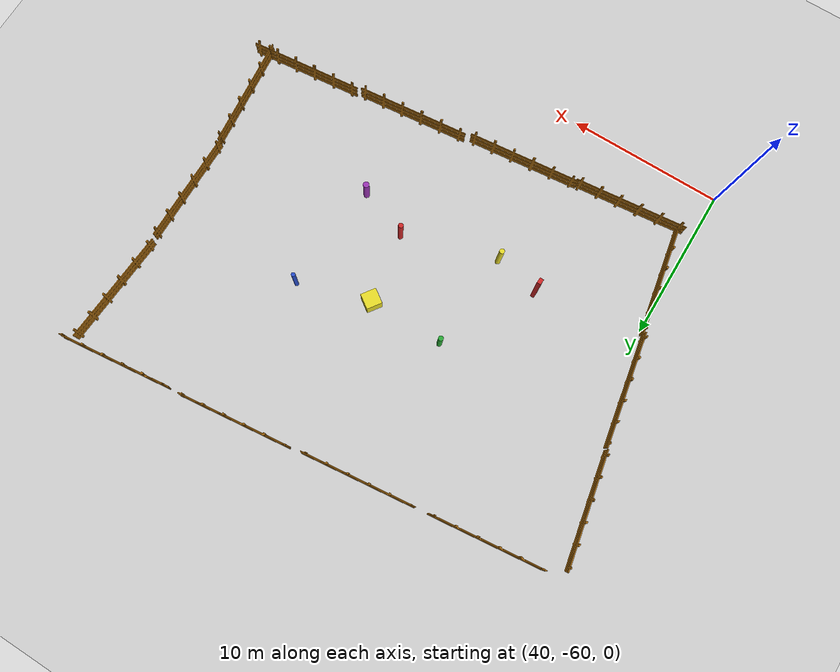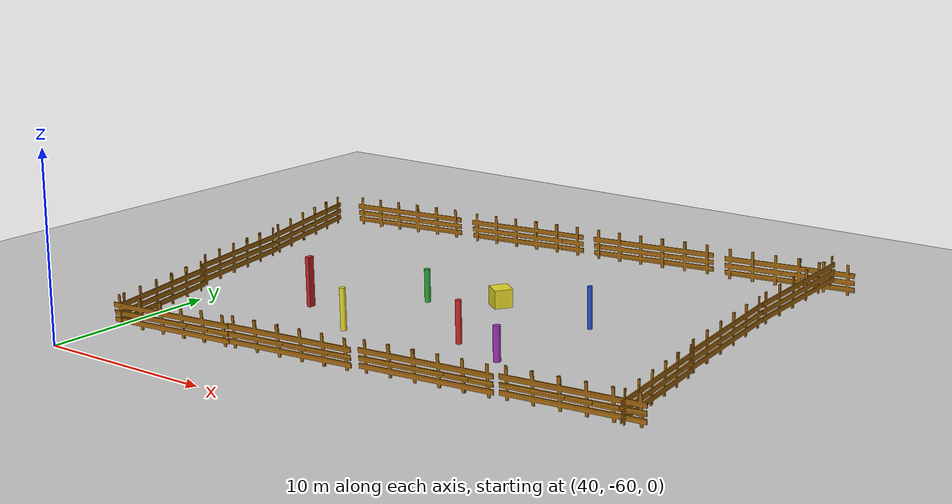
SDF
<sdf version="1.6">
 <world name="default">
  <light name="sun" type="directional">
   <pose>0 0 10 0 -0 0</pose>
   <diffuse>0.8 0.8 0.8 1</diffuse>
   <specular>0.2 0.2 0.2 1</specular>
   <attenuation>
    <range>1000</range>
    <constant>0.9</constant>
    <linear>0.01</linear>
    <quadratic>0.001</quadratic>
   </attenuation>
   <direction>-0.5 0.1 -0.9</direction>
  </light>
  <physics name="default_physics" default="0" type="ode">
   <real_time_update_rate>1000</real_time_update_rate>
   <real_time_factor>1</real_time_factor>
   <max_step_size>0.001</max_step_size>
  </physics>
  <gravity>0 0 -9.8</gravity>
  <magnetic_field>6e-06 2.3e-05 -4.2e-05</magnetic_field>
  <atmosphere type="adiabatic"/>
  <scene>
   <sky><clouds><speed>12</speed></clouds></sky>
   <shadows>1</shadows>
   <ambient>0.4 0.4 0.4 1</ambient>
   <background>0.7 0.7 0.7 1</background>
  </scene>
  <spherical_coordinates>
   <surface_model>EARTH_WGS84</surface_model>
   <latitude_deg>0</latitude_deg>
   <longitude_deg>0</longitude_deg>
   <elevation>0</elevation>
   <heading_deg>0</heading_deg>
  </spherical_coordinates>
  <model name="fence_5">
   <static>1</static>
   <link name="link">
    <inertial>
     <mass>100</mass>
     <inertia><ixx>192.33</ixx><ixy>0</ixy><ixz>0</ixz><iyy>12.33</iyy><iyz>0</iyz><izz>204</izz></inertia>
    </inertial>
    <collision name="collision">
     <geometry><mesh><uri>model://fence_5/meshes/fence_5_brown.dae</uri><scale>1 1 1</scale></mesh></geometry>
    </collision>
    <visual name="visual">
     <geometry><mesh><uri>model://fence_5/meshes/fence_5_brown.dae</uri><scale>1 1 1</scale></mesh></geometry>
    </visual>
   </link>
   <pose>41.6449 -52.737 1.01497 0.014116 0.007603 -1.39043</pose>
  </model>
  <model name="fence_5_clone_0_clone">
   <static>1</static>
   <link name="link">
    <inertial>
     <mass>100</mass>
     <inertia><ixx>192.33</ixx><ixy>0</ixy><ixz>0</ixz><iyy>12.33</iyy><iyz>0</iyz><izz>204</izz></inertia>
    </inertial>
    <collision name="collision">
     <geometry><mesh><uri>model://fence_5/meshes/fence_5_brown.dae</uri><scale>1 1 1</scale></mesh></geometry>
    </collision>
    <visual name="visual">
     <geometry><mesh><uri>model://fence_5/meshes/fence_5_brown.dae</uri><scale>1 1 1</scale></mesh></geometry>
    </visual>
   </link>
   <pose>69.2217 -35.0688 1.89165 -0.006758 0.071374 -1.61301</pose>
  </model>
  <model name="fence_5_clone_0_clone_0">
   <static>1</static>
   <link name="link">
    <inertial>
     <mass>100</mass>
     <inertia><ixx>192.33</ixx><ixy>0</ixy><ixz>0</ixz><iyy>12.33</iyy><iyz>0</iyz><izz>204</izz></inertia>
    </inertial>
    <collision name="collision">
     <geometry><mesh><uri>model://fence_5/meshes/fence_5_brown.dae</uri><scale>1 1 1</scale></mesh></geometry>
    </collision>
    <visual name="visual">
     <geometry><mesh><uri>model://fence_5/meshes/fence_5_brown.dae</uri><scale>1 1 1</scale></mesh></geometry>
    </visual>
   </link>
   <pose>69.2517 -42.5183 1.4512 -0.00172 0.070673 -1.54061</pose>
  </model>
  <model name="fence_5_clone_0_clone_1">
   <static>1</static>
   <link name="link">
    <inertial>
     <mass>100</mass>
     <inertia><ixx>192.33</ixx><ixy>0</ixy><ixz>0</ixz><iyy>12.33</iyy><iyz>0</iyz><izz>204</izz></inertia>
    </inertial>
    <collision name="collision">
     <geometry><mesh><uri>model://fence_5/meshes/fence_5_brown.dae</uri><scale>1 1 1</scale></mesh></geometry>
    </collision>
    <visual name="visual">
     <geometry><mesh><uri>model://fence_5/meshes/fence_5_brown.dae</uri><scale>1 1 1</scale></mesh></geometry>
    </visual>
   </link>
   <pose>69.8432 -49.6932 1.08703 -0.01162 0.02213 -1.47072</pose>
  </model>
  <model name="fence_5_clone_0_clone_1_clone_clone_1">
   <static>1</static>
   <link name="link">
    <inertial>
     <mass>100</mass>
     <inertia><ixx>192.33</ixx><ixy>0</ixy><ixz>0</ixz><iyy>12.33</iyy><iyz>0</iyz><izz>204</izz></inertia>
    </inertial>
    <collision name="collision">
     <geometry><mesh><uri>model://fence_5/meshes/fence_5_brown.dae</uri><scale>1 1 1</scale></mesh></geometry>
    </collision>
    <visual name="visual">
     <geometry><mesh><uri>model://fence_5/meshes/fence_5_brown.dae</uri><scale>1 1 1</scale></mesh></geometry>
    </visual>
   </link>
   <pose>44.7747 -57.3444 0.883617 -0.084624 0.000646 -3.03348</pose>
  </model>
  <model name="fence_5_clone_0_clone_clone_clone_0">
   <static>1</static>
   <link name="link">
    <inertial>
     <mass>100</mass>
     <inertia><ixx>192.33</ixx><ixy>0</ixy><ixz>0</ixz><iyy>12.33</iyy><iyz>0</iyz><izz>204</izz></inertia>
    </inertial>
    <collision name="collision">
     <geometry><mesh><uri>model://fence_5/meshes/fence_5_brown.dae</uri><scale>1 1 1</scale></mesh></geometry>
    </collision>
    <visual name="visual">
     <geometry><mesh><uri>model://fence_5/meshes/fence_5_brown.dae</uri><scale>1 1 1</scale></mesh></geometry>
    </visual>
   </link>
   <pose>41.5544 -33.278 1.57982 0.084583 -0.00842 0.112795</pose>
  </model>
  <model name="grass_ground_plane">
   <static>1</static>
   <link name="link">
    <collision name="collision">
     <geometry><plane><normal>0 0 1</normal><size>200 200</size></plane></geometry>
     <surface><friction><ode><mu>0.5</mu><mu2>0.5</mu2></ode></friction></surface>
    </collision>
    <visual name="visual">
     <cast_shadows>0</cast_shadows>
     <geometry><plane><normal>0 0 1</normal><size>200 200</size></plane></geometry>
     <material>
      <script>
       <uri>model://grass_ground_plane/materials/scripts/grass_ground_plane.material</uri>
       <name>GrassGroundPlane/Image</name>
      </script>
     </material>
    </visual>
   </link>
  </model>
  <model name="fence_5_clone_0_clone_1_clone_clone_1_clone">
   <static>1</static>
   <link name="link">
    <inertial>
     <mass>100</mass>
     <inertia><ixx>192.33</ixx><ixy>0</ixy><ixz>0</ixz><iyy>12.33</iyy><iyz>0</iyz><izz>204</izz></inertia>
    </inertial>
    <collision name="collision">
     <geometry><mesh><uri>model://fence_5/meshes/fence_5_brown.dae</uri><scale>1 1 1</scale></mesh></geometry>
    </collision>
    <visual name="visual">
     <geometry><mesh><uri>model://fence_5/meshes/fence_5_brown.dae</uri><scale>1 1 1</scale></mesh></geometry>
    </visual>
   </link>
   <pose>51.8829 -56.4713 0.89101 -0.084624 0.000646 -3.03348</pose>
  </model>
  <model name="fence_5_clone_0_clone_1_clone_clone_1_clone_0">
   <static>1</static>
   <link name="link">
    <inertial>
     <mass>100</mass>
     <inertia><ixx>192.33</ixx><ixy>0</ixy><ixz>0</ixz><iyy>12.33</iyy><iyz>0</iyz><izz>204</izz></inertia>
    </inertial>
    <collision name="collision">
     <geometry><mesh><uri>model://fence_5/meshes/fence_5_brown.dae</uri><scale>1 1 1</scale></mesh></geometry>
    </collision>
    <visual name="visual">
     <geometry><mesh><uri>model://fence_5/meshes/fence_5_brown.dae</uri><scale>1 1 1</scale></mesh></geometry>
    </visual>
   </link>
   <pose>59.4161 -55.4745 0.908181 -0.084624 0.000646 -3.03348</pose>
  </model>
  <model name="fence_5_clone_0_clone_1_clone_clone_1_clone_1">
   <static>1</static>
   <link name="link">
    <inertial>
     <mass>100</mass>
     <inertia><ixx>192.33</ixx><ixy>0</ixy><ixz>0</ixz><iyy>12.33</iyy><iyz>0</iyz><izz>204</izz></inertia>
    </inertial>
    <collision name="collision">
     <geometry><mesh><uri>model://fence_5/meshes/fence_5_brown.dae</uri><scale>1 1 1</scale></mesh></geometry>
    </collision>
    <visual name="visual">
     <geometry><mesh><uri>model://fence_5/meshes/fence_5_brown.dae</uri><scale>1 1 1</scale></mesh></geometry>
    </visual>
   </link>
   <pose>66.8481 -54.5349 0.922786 -0.084624 0.000646 -3.03348</pose>
  </model>
  <model name="fence_5_clone_1">
   <static>1</static>
   <link name="link">
    <inertial>
     <mass>100</mass>
     <inertia><ixx>192.33</ixx><ixy>0</ixy><ixz>0</ixz><iyy>12.33</iyy><iyz>0</iyz><izz>204</izz></inertia>
    </inertial>
    <collision name="collision">
     <geometry><mesh><uri>model://fence_5/meshes/fence_5_brown.dae</uri><scale>1 1 1</scale></mesh></geometry>
    </collision>
    <visual name="visual">
     <geometry><mesh><uri>model://fence_5/meshes/fence_5_brown.dae</uri><scale>1 1 1</scale></mesh></geometry>
    </visual>
   </link>
   <pose>40.2743 -45.6765 1.23155 0.014116 -5.5e-05 -1.39054</pose>
  </model>
  <model name="fence_5_clone_2">
   <static>1</static>
   <link name="link">
    <inertial>
     <mass>100</mass>
     <inertia><ixx>192.33</ixx><ixy>0</ixy><ixz>0</ixz><iyy>12.33</iyy><iyz>0</iyz><izz>204</izz></inertia>
    </inertial>
    <collision name="collision">
     <geometry><mesh><uri>model://fence_5/meshes/fence_5_brown.dae</uri><scale>1 1 1</scale></mesh></geometry>
    </collision>
    <visual name="visual">
     <geometry><mesh><uri>model://fence_5/meshes/fence_5_brown.dae</uri><scale>1 1 1</scale></mesh></geometry>
    </visual>
   </link>
   <pose>38.8958 -38.4611 1.38748 0.014125 0.035917 -1.39003</pose>
  </model>
  <model name="fence_5_clone_0_clone_clone_clone_0_clone">
   <static>1</static>
   <link name="link">
    <inertial>
     <mass>100</mass>
     <inertia><ixx>192.33</ixx><ixy>0</ixy><ixz>0</ixz><iyy>12.33</iyy><iyz>0</iyz><izz>204</izz></inertia>
    </inertial>
    <collision name="collision">
     <geometry><mesh><uri>model://fence_5/meshes/fence_5_brown.dae</uri><scale>1 1 1</scale></mesh></geometry>
    </collision>
    <visual name="visual">
     <geometry><mesh><uri>model://fence_5/meshes/fence_5_brown.dae</uri><scale>1 1 1</scale></mesh></geometry>
    </visual>
   </link>
   <pose>49.572 -32.3723 1.6064 0.084583 -0.00842 0.112795</pose>
  </model>
  <model name="fence_5_clone_0_clone_clone_clone_0_clone_0">
   <static>1</static>
   <link name="link">
    <inertial>
     <mass>100</mass>
     <inertia><ixx>192.33</ixx><ixy>0</ixy><ixz>0</ixz><iyy>12.33</iyy><iyz>0</iyz><izz>204</izz></inertia>
    </inertial>
    <collision name="collision">
     <geometry><mesh><uri>model://fence_5/meshes/fence_5_brown.dae</uri><scale>1 1 1</scale></mesh></geometry>
    </collision>
    <visual name="visual">
     <geometry><mesh><uri>model://fence_5/meshes/fence_5_brown.dae</uri><scale>1 1 1</scale></mesh></geometry>
    </visual>
   </link>
   <pose>57.4396 -31.4279 1.64267 0.084583 -0.00842 0.112795</pose>
  </model>
  <model name="fence_5_clone_0_clone_clone_clone_0_clone_1">
   <static>1</static>
   <link name="link">
    <inertial>
     <mass>100</mass>
     <inertia><ixx>192.33</ixx><ixy>0</ixy><ixz>0</ixz><iyy>12.33</iyy><iyz>0</iyz><izz>204</izz></inertia>
    </inertial>
    <collision name="collision">
     <geometry><mesh><uri>model://fence_5/meshes/fence_5_brown.dae</uri><scale>1 1 1</scale></mesh></geometry>
    </collision>
    <visual name="visual">
     <geometry><mesh><uri>model://fence_5/meshes/fence_5_brown.dae</uri><scale>1 1 1</scale></mesh></geometry>
    </visual>
   </link>
   <pose>65.3637 -30.5997 1.65271 0.084583 -0.00842 0.112795</pose>
  </model>
  <model name="unit_cylinder">
   <static>1</static>
   <pose>49.6681 -49.3029 0.93961 -0.01699 -0.019436 2.28995</pose>
   <link name="link">
    <inertial>
     <mass>1</mass>
     <inertia><ixx>0.145833</ixx><ixy>0</ixy><ixz>0</ixz><iyy>0.145833</iyy><iyz>0</iyz><izz>0.125</izz></inertia>
    </inertial>
    <collision name="collision">
     <geometry><cylinder><radius>0.161708</radius><length>2.62945</length></cylinder></geometry>
    </collision>
    <visual name="visual">
     <geometry><cylinder><radius>0.161708</radius><length>2.62945</length></cylinder></geometry>
     <material>
      <script><name>Gazebo/Yellow</name><uri>file://media/materials/scripts/gazebo.material</uri></script>
     </material>
    </visual>
   </link>
  </model>
  <model name="unit_cylinder_clone">
   <static>1</static>
   <pose>55.695 -47.4769 0.93961 -0.01699 -0.019436 2.28995</pose>
   <link name="link">
    <inertial>
     <mass>1</mass>
     <inertia><ixx>0.145833</ixx><ixy>0</ixy><ixz>0</ixz><iyy>0.145833</iyy><iyz>0</iyz><izz>0.125</izz></inertia>
    </inertial>
    <collision name="collision">
     <geometry><cylinder><radius>0.161708</radius><length>2.62945</length></cylinder></geometry>
    </collision>
    <visual name="visual">
     <geometry><cylinder><radius>0.161708</radius><length>2.62945</length></cylinder></geometry>
     <material>
      <script><name>Gazebo/Red</name><uri>file://media/materials/scripts/gazebo.material</uri></script>
     </material>
    </visual>
   </link>
  </model>
  <model name="unit_cylinder_clone_0">
   <static>1</static>
   <pose>50.0733 -42.9035 0.93961 -0.01699 -0.019436 2.28995</pose>
   <link name="link">
    <inertial>
     <mass>1</mass>
     <inertia><ixx>0.145833</ixx><ixy>0</ixy><ixz>0</ixz><iyy>0.145833</iyy><iyz>0</iyz><izz>0.125</izz></inertia>
    </inertial>
    <collision name="collision">
     <geometry><cylinder><radius>0.161708</radius><length>1.84061</length></cylinder></geometry>
    </collision>
    <visual name="visual">
     <geometry><cylinder><radius>0.161708</radius><length>1.84061</length></cylinder></geometry>
     <material>
      <script><name>Gazebo/Green</name><uri>file://media/materials/scripts/gazebo.material</uri></script>
     </material>
    </visual>
   </link>
  </model>
  <model name="unit_cylinder_clone_1">
   <static>1</static>
   <pose>59.5619 -41.4879 0.93961 -0.01699 -0.019436 2.28995</pose>
   <link name="link">
    <inertial>
     <mass>1</mass>
     <inertia><ixx>0.145833</ixx><ixy>0</ixy><ixz>0</ixz><iyy>0.145833</iyy><iyz>0</iyz><izz>0.125</izz></inertia>
    </inertial>
    <collision name="collision">
     <geometry><cylinder><radius>0.129366</radius><length>2.62945</length></cylinder></geometry>
    </collision>
    <visual name="visual">
     <geometry><cylinder><radius>0.129366</radius><length>2.62945</length></cylinder></geometry>
     <material>
      <script><name>Gazebo/Blue</name><uri>file://media/materials/scripts/gazebo.material</uri></script>
     </material>
    </visual>
   </link>
  </model>
  <model name="unit_cylinder_clone_2">
   <static>1</static>
   <pose>58.9559 -48.696 0.93961 -0.01699 -0.019436 2.28995</pose>
   <link name="link">
    <inertial>
     <mass>1</mass>
     <inertia><ixx>0.145833</ixx><ixy>0</ixy><ixz>0</ixz><iyy>0.145833</iyy><iyz>0</iyz><izz>0.125</izz></inertia>
    </inertial>
    <collision name="collision">
     <geometry><cylinder><radius>0.19405</radius><length>1.84061</length></cylinder></geometry>
    </collision>
    <visual name="visual">
     <geometry><cylinder><radius>0.19405</radius><length>1.84061</length></cylinder></geometry>
     <material>
      <script><name>Gazebo/Purple</name><uri>file://media/materials/scripts/gazebo.material</uri></script>
     </material>
    </visual>
   </link>
  </model>
  <model name="unit_box">
   <static>1</static>
   <pose>54.8852 -42.8153 1.17121 0.030717 -0.021185 0.958987</pose>
   <link name="link">
    <inertial>
     <mass>1</mass>
     <inertia>
      <ixx>0.166667</ixx>
      <ixy>0</ixy>
      <ixz>0</ixz>
      <iyy>0.166667</iyy>
      <iyz>0</iyz>
      <izz>0.166667</izz>
     </inertia>
    </inertial>
    <collision name="collision"><geometry><box><size>1 1 1</size></box></geometry></collision>
    <visual name="visual">
     <geometry><box><size>1 1 1</size></box></geometry>
     <material>
      <script><name>Gazebo/Yellow</name><uri>file://media/materials/scripts/gazebo.material</uri></script>
     </material>
    </visual>
   </link>
  </model>
  <model name="unit_box_0">
   <static>1</static>
   <pose>46.7696 -48.565 1.88325 0.059701 0.037888 -0.055023</pose>
   <link name="link">
    <inertial>
     <mass>1</mass>
     <inertia>
      <ixx>0.166667</ixx>
      <ixy>0</ixy>
      <ixz>0</ixz>
      <iyy>0.166667</iyy>
      <iyz>0</iyz>
      <izz>0.166667</izz>
     </inertia>
    </inertial>
    <collision name="collision"><geometry><box><size>0.250463 0.363103 2.74644</size></box></geometry></collision>
    <visual name="visual">
     <geometry><box><size>0.250463 0.363103 2.74644</size></box></geometry>
     <material>
      <script><name>Gazebo/Red</name><uri>file://media/materials/scripts/gazebo.material</uri></script>
     </material>
    </visual>
   </link>
  </model>
 </world>
</sdf>
